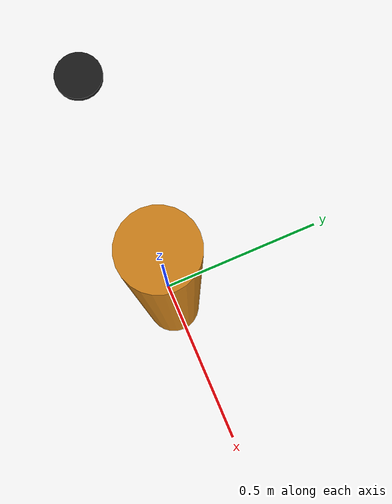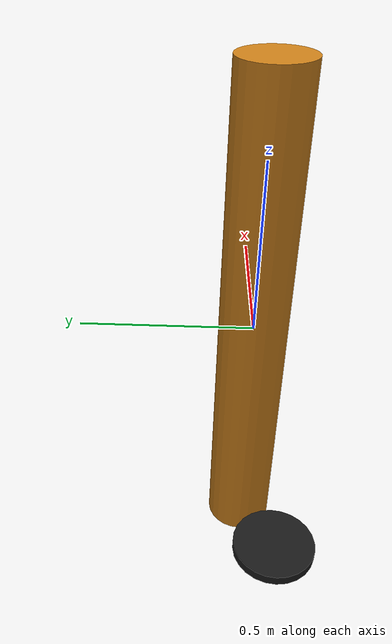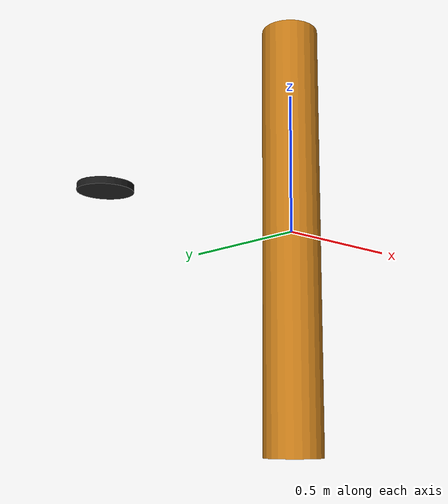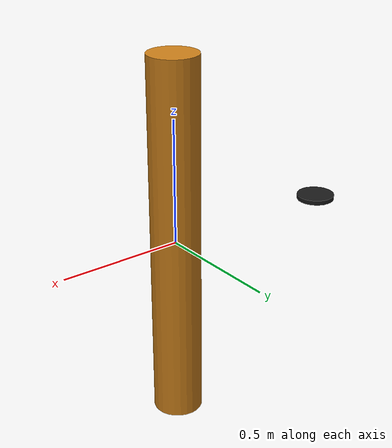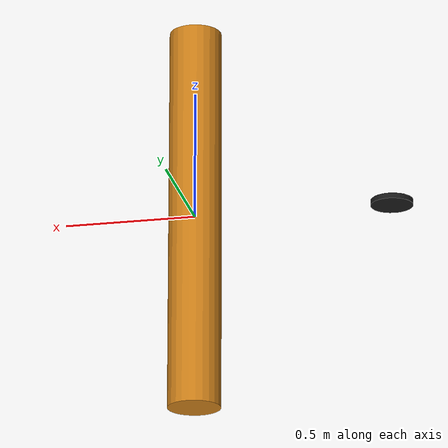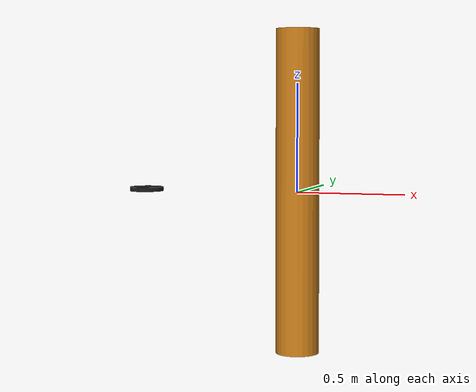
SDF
<sdf version="1.9">
  <model name="plane_spike">
    <link name="base_link">
      <inertial>
        <pose>0 0 -0.03 0 0 0</pose>
        <mass>46.0</mass>
        <inertia>
          <ixx>0.24</ixx>
          <ixy>0</ixy>
          <ixz>0</ixz>
          <iyy>9.12</iyy>
          <iyz>0</iyz>
          <izz>9.12</izz>
        </inertia>
      </inertial>

      <collision name="hull_collision">
        <geometry>
          <cylinder><radius>0.1</radius><length>1.5</length></cylinder>
        </geometry>
      </collision>

      <visual name="hull_visual">
        <geometry>
          <cylinder><radius>0.1</radius><length>1.5</length></cylinder>
        </geometry>
        <material>
          <diffuse>0.8 0.5 0.1 1</diffuse>
          <ambient>0.6 0.4 0.1 1</ambient>
        </material>
      </visual>
    </link>

    <link name="prop_link">
      <pose>-0.75 0 0 0 0 0</pose>
      <inertial>
        <mass>0.2</mass>
        <inertia>
          <ixx>0.01</ixx>
          <ixy>0</ixy>
          <ixz>0</ixz>
          <iyy>0.01</iyy>
          <iyz>0</iyz>
          <izz>0.01</izz>
        </inertia>
      </inertial>
      <visual name="prop_visual">
        <geometry>
          <cylinder><radius>0.08</radius><length>0.02</length></cylinder>
        </geometry>
        <material>
          <diffuse>0.1 0.1 0.1 1</diffuse>
          <ambient>0.1 0.1 0.1 1</ambient>
        </material>
      </visual>
    </link>
    <joint name="prop_joint" type="revolute">
      <parent>base_link</parent>
      <child>prop_link</child>
      <axis>
        <xyz>1 0 0</xyz>
        <limit>
          <lower>-1e16</lower>
          <upper>1e16</upper>
        </limit>
        <dynamics>
          <damping>0.02</damping>
        </dynamics>
      </axis>
    </joint>

    <!-- sensors -->
    <link name="imu_link">
      <inertial>
        <pose>0 0 0 0 0 0</pose>
        <mass>0.1</mass>
        <inertia>
          <ixx>0.0001</ixx>
          <ixy>0</ixy>
          <ixz>0</ixz>
          <iyy>0.0001</iyy>
          <iyz>0</iyz>
          <izz>0.0001</izz>
        </inertia>
      </inertial>
      <sensor name="imu_sensor" type="imu">
        <pose degrees="true">0 0 0 180 0 0</pose>
        <always_on>1</always_on>
        <update_rate>1000.0</update_rate>
      </sensor>
    </link>
    <joint name="imu_joint" type="revolute">
      <child>imu_link</child>
      <parent>base_link</parent>
      <axis>
        <xyz>0 0 1</xyz>
        <limit>
          <lower>0</lower>
          <upper>0</upper>
        </limit>
        <dynamics>
          <damping>1.0</damping>
        </dynamics>
      </axis>
    </joint>

    <!-- plugins -->
    <plugin name="gz::sim::systems::JointStatePublisher"
      filename="gz-sim-joint-state-publisher-system">
    </plugin>
    <plugin name="gz::sim::systems::OdometryPublisher"
      filename="gz-sim-odometry-publisher-system">
      <odom_frame>odom</odom_frame>
      <robot_base_frame>base_link</robot_base_frame>
      <dimensions>3</dimensions>
    </plugin>

    <plugin name="gz::sim::systems::Thruster"
      filename="gz-sim-thruster-system">
      <namespace>plane_spike</namespace>
      <joint_name>prop_joint</joint_name>
      <thrust_coefficient>0.02</thrust_coefficient>
      <fluid_density>1025</fluid_density>
      <propeller_diameter>0.14</propeller_diameter>
      <velocity_control>0</velocity_control>
      <use_angvel_cmd>0</use_angvel_cmd>
    </plugin>

    <!-- light drag, crude/placeholder like the mass — not tuned, just
         enough to keep the vehicle from accelerating forever. -->
    <plugin filename="gz-sim-hydrodynamics-system"
            name="gz::sim::systems::Hydrodynamics">
      <link_name>base_link</link_name>
      <water_density>1025.0</water_density>
      <xDotU>0</xDotU>
      <yDotV>0</yDotV>
      <zDotW>0</zDotW>
      <kDotP>0</kDotP>
      <mDotQ>0</mDotQ>
      <nDotR>0</nDotR>
      <xU>-5</xU>
      <yV>-15</yV>
      <zW>-15</zW>
      <kP>-2</kP>
      <mQ>-2</mQ>
      <nR>-2</nR>
      <xUabsU>-8</xUabsU>
      <yVabsV>-25</yVabsV>
      <zWabsW>-25</zWabsW>
      <kPabsP>-3</kPabsP>
      <mQabsQ>-3</mQabsQ>
      <nRabsR>-3</nRabsR>
    </plugin>

    <plugin name="ArduPilotPlugin"
      filename="ArduPilotPlugin">
      <fdm_addr>127.0.0.1</fdm_addr>
      <fdm_port_in>9100</fdm_port_in>
      <connectionTimeoutMaxCount>5</connectionTimeoutMaxCount>
      <lock_step>1</lock_step>
      <gazeboXYZToNED degrees="true">0 0 0 180 0 90</gazeboXYZToNED>
      <modelXYZToAirplaneXForwardZDown degrees="true">0 0 0 180 0 0</modelXYZToAirplaneXForwardZDown>
      <imuName>imu_link::imu_sensor</imuName>

      <control channel="2">
        <jointName>prop_joint</jointName>
        <multiplier>50</multiplier>
        <offset>-0.5</offset>
        <servo_min>1000</servo_min>
        <servo_max>2000</servo_max>
        <type>COMMAND</type>
        <cmd_topic>/model/plane_spike/joint/prop_joint/cmd_thrust</cmd_topic>
      </control>
    </plugin>

  </model>
</sdf>
